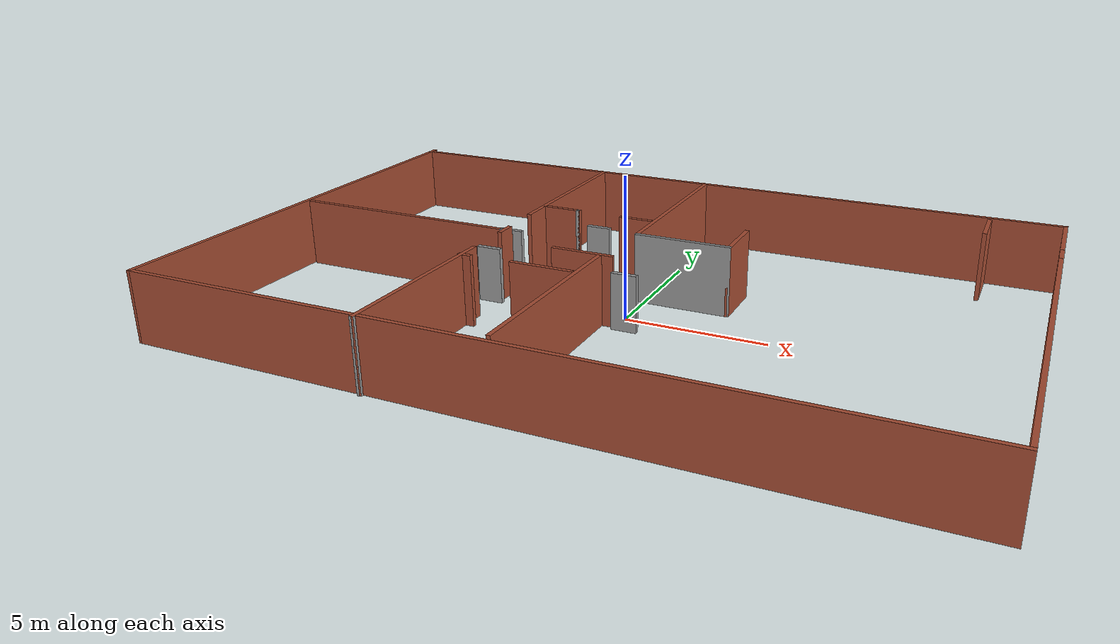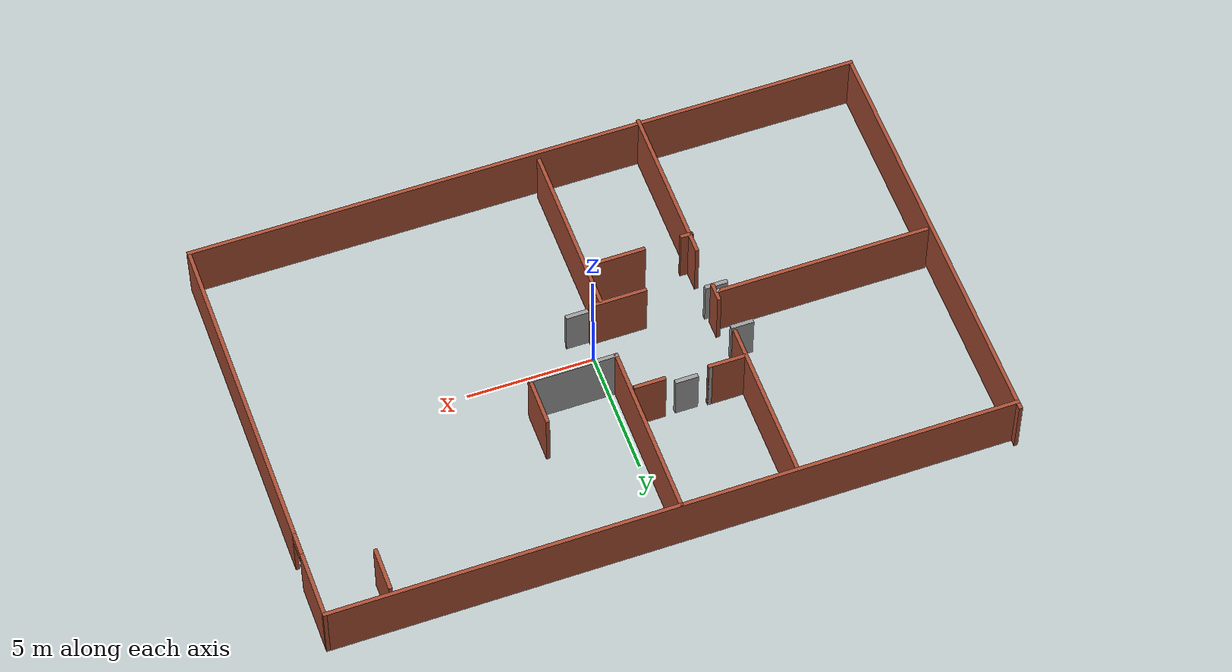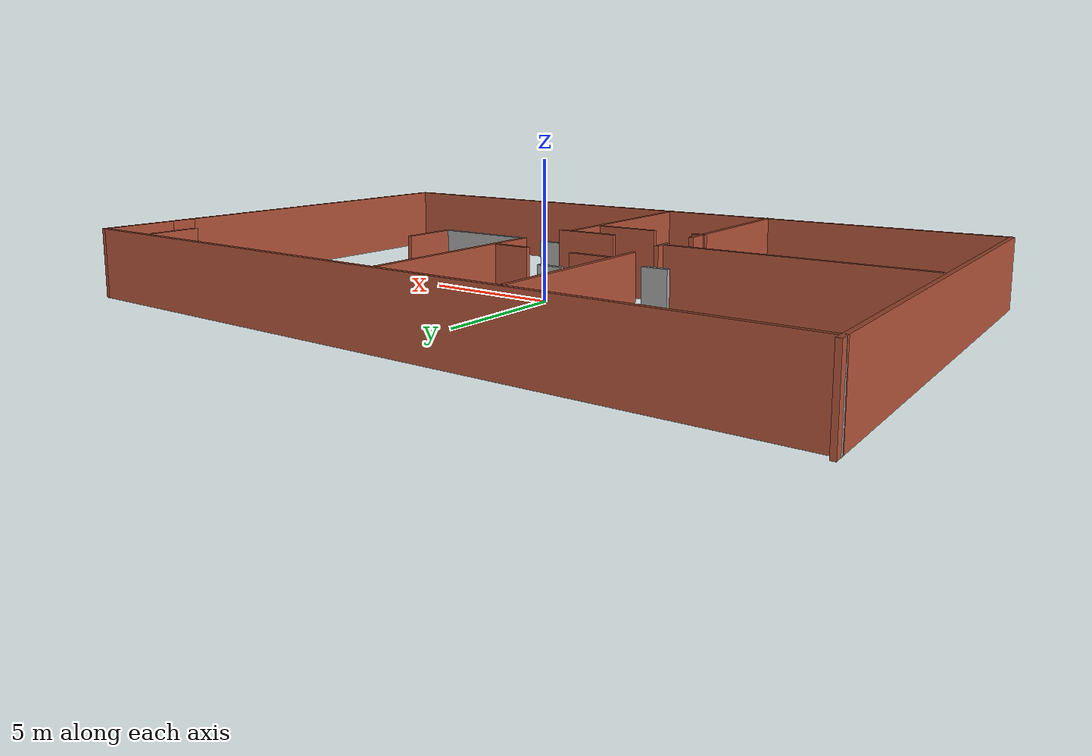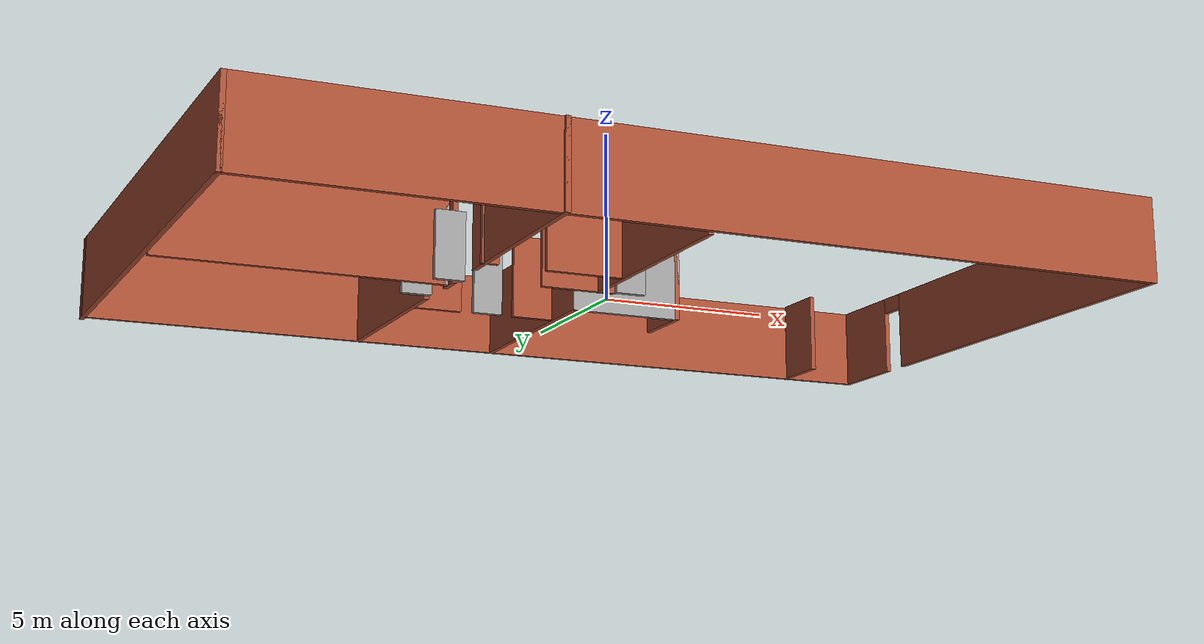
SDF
<?xml version='1.0'?>
<sdf version='1.6'>
  <model name='My_House'>
    <pose frame=''>-0.113138 0.314811 0 0 -0 0</pose>
    <link name='Door_1'>
      <collision name='Door_1_Collision'>
        <geometry>
          <box>
            <size>0.9 0.17 2</size>
          </box>
        </geometry>
        <pose frame=''>0 0 1 0 -0 0</pose>
      </collision>
      <visual name='Door_1_Visual'>
        <pose frame=''>0 0 1 0 -0 0</pose>
        <geometry>
          <box>
            <size>0.9 0.17 2</size>
          </box>
        </geometry>
        <material>
          <script>
            <uri>file://media/materials/scripts/gazebo.material</uri>
            <name>Gazebo/Grey</name>
          </script>
        </material>
      </visual>
      <pose frame=''>0.453986 -1.19512 0 0 -0 0</pose>
    </link>
    <link name='Door_2'>
      <collision name='Door_2_Collision'>
        <geometry>
          <box>
            <size>0.9 0.17 2</size>
          </box>
        </geometry>
        <pose frame=''>0 0 1 0 -0 0</pose>
      </collision>
      <visual name='Door_2_Visual'>
        <pose frame=''>0 0 1 0 -0 0</pose>
        <geometry>
          <box>
            <size>0.9 0.17 2</size>
          </box>
        </geometry>
        <material>
          <script>
            <uri>file://media/materials/scripts/gazebo.material</uri>
            <name>Gazebo/Grey</name>
          </script>
        </material>
      </visual>
      <pose frame=''>-2.38165 2.87107 0 0 -0 0</pose>
    </link>
    <link name='Door_3'>
      <collision name='Door_3_Collision'>
        <geometry>
          <box>
            <size>0.9 0.17 2</size>
          </box>
        </geometry>
        <pose frame=''>0 0 1 0 -0 0</pose>
      </collision>
      <visual name='Door_3_Visual'>
        <pose frame=''>0 0 1 0 -0 0</pose>
        <geometry>
          <box>
            <size>0.9 0.17 2</size>
          </box>
        </geometry>
        <material>
          <script>
            <uri>file://media/materials/scripts/gazebo.material</uri>
            <name>Gazebo/Grey</name>
          </script>
        </material>
      </visual>
      <pose frame=''>-4.8916 -0.713756 0 0 -0 0</pose>
    </link>
    <link name='Door_4'>
      <collision name='Door_4_Collision'>
        <geometry>
          <box>
            <size>0.9 0.17 2</size>
          </box>
        </geometry>
        <pose frame=''>0 0 1 0 -0 0</pose>
      </collision>
      <visual name='Door_4_Visual'>
        <pose frame=''>0 0 1 0 -0 0</pose>
        <geometry>
          <box>
            <size>0.9 0.17 2</size>
          </box>
        </geometry>
        <material>
          <script>
            <uri>file://media/materials/scripts/gazebo.material</uri>
            <name>Gazebo/Grey</name>
          </script>
        </material>
      </visual>
      <pose frame=''>-5.17074 1.28677 0 0 -0 0</pose>
    </link>
    <link name='Wall_0'>
      <collision name='Wall_0_Collision'>
        <geometry>
          <box>
            <size>17 0.15 2.5</size>
          </box>
        </geometry>
        <pose frame=''>0 0 1.25 0 -0 0</pose>
      </collision>
      <visual name='Wall_0_Visual'>
        <pose frame=''>0 0 1.25 0 -0 0</pose>
        <geometry>
          <box>
            <size>17 0.15 2.5</size>
          </box>
        </geometry>
        <material>
          <script>
            <uri>file://media/materials/scripts/gazebo.material</uri>
            <name>Gazebo/Bricks</name>
          </script>
          <ambient>1 1 1 1</ambient>
        </material>
      </visual>
      <pose frame=''>-13.3 0.046748 0 0 0 -1.5708</pose>
    </link>
    <link name='Wall_11'>
      <collision name='Wall_11_Collision'>
        <geometry>
          <box>
            <size>0.75 0.15 2.5</size>
          </box>
        </geometry>
        <pose frame=''>0 0 1.25 0 -0 0</pose>
      </collision>
      <visual name='Wall_11_Visual'>
        <pose frame=''>0 0 1.25 0 -0 0</pose>
        <geometry>
          <box>
            <size>0.75 0.15 2.5</size>
          </box>
        </geometry>
        <material>
          <script>
            <uri>file://media/materials/scripts/gazebo.material</uri>
            <name>Gazebo/Bricks</name>
          </script>
          <ambient>1 1 1 1</ambient>
        </material>
      </visual>
      <pose frame=''>-4.6326 -0.067638 0 0 0 -1.5708</pose>
    </link>
    <link name='Wall_13'>
      <collision name='Wall_13_Collision'>
        <geometry>
          <box>
            <size>6.5 0.15 2.5</size>
          </box>
        </geometry>
        <pose frame=''>0 0 1.25 0 -0 0</pose>
      </collision>
      <visual name='Wall_13_Visual'>
        <pose frame=''>0 0 1.25 0 -0 0</pose>
        <geometry>
          <box>
            <size>6.5 0.15 2.5</size>
          </box>
        </geometry>
        <material>
          <script>
            <uri>file://media/materials/scripts/gazebo.material</uri>
            <name>Gazebo/Bricks</name>
          </script>
          <ambient>1 1 1 1</ambient>
        </material>
      </visual>
      <pose frame=''>-4.6326 -5.29675 0 0 0 -1.5708</pose>
    </link>
    <link name='Wall_14'>
      <collision name='Wall_14_Collision'>
        <geometry>
          <box>
            <size>0.15 0.15 2.5</size>
          </box>
        </geometry>
        <pose frame=''>0 0 1.25 0 -0 0</pose>
      </collision>
      <visual name='Wall_14_Visual'>
        <pose frame=''>0 0 1.25 0 -0 0</pose>
        <geometry>
          <box>
            <size>0.15 0.15 2.5</size>
          </box>
        </geometry>
        <material>
          <script>
            <uri>file://media/materials/scripts/gazebo.material</uri>
            <name>Gazebo/Grey</name>
          </script>
          <ambient>1 1 1 1</ambient>
        </material>
      </visual>
      <pose frame=''>-4.6326 -8.47175 0 0 -0 0</pose>
    </link>
    <link name='Wall_16'>
      <collision name='Wall_16_Collision'>
        <geometry>
          <box>
            <size>7 0.15 2.5</size>
          </box>
        </geometry>
        <pose frame=''>0 0 1.25 0 -0 0</pose>
      </collision>
      <visual name='Wall_16_Visual'>
        <pose frame=''>0 0 1.25 0 -0 0</pose>
        <geometry>
          <box>
            <size>7 0.15 2.5</size>
          </box>
        </geometry>
        <material>
          <script>
            <uri>file://media/materials/scripts/gazebo.material</uri>
            <name>Gazebo/Bricks</name>
          </script>
          <ambient>1 1 1 1</ambient>
        </material>
      </visual>
      <pose frame=''>-0.4594 -4.5837 0 0 0 -1.5708</pose>
    </link>
    <link name='Wall_18'>
      <collision name='Wall_18_Collision'>
        <geometry>
          <box>
            <size>2.25 0.15 2.5</size>
          </box>
        </geometry>
        <pose frame=''>0 0 1.25 0 -0 0</pose>
      </collision>
      <visual name='Wall_18_Visual'>
        <pose frame=''>0 0 1.25 0 -0 0</pose>
        <geometry>
          <box>
            <size>2.25 0.15 2.5</size>
          </box>
        </geometry>
        <material>
          <script>
            <uri>file://media/materials/scripts/gazebo.material</uri>
            <name>Gazebo/Bricks</name>
          </script>
          <ambient>1 1 1 1</ambient>
        </material>
      </visual>
      <pose frame=''>-1.12148 -1.0517 0 0 -0 0</pose>
    </link>
    <link name='Wall_2'>
      <collision name='Wall_2_Collision'>
        <geometry>
          <box>
            <size>26.75 0.15 2.5</size>
          </box>
        </geometry>
        <pose frame=''>0 0 1.25 0 -0 0</pose>
      </collision>
      <visual name='Wall_2_Visual'>
        <pose frame=''>0 0 1.25 0 -0 0</pose>
        <geometry>
          <box>
            <size>26.75 0.15 2.5</size>
          </box>
        </geometry>
        <material>
          <script>
            <uri>file://media/materials/scripts/gazebo.material</uri>
            <name>Gazebo/Bricks</name>
          </script>
          <ambient>1 1 1 1</ambient>
        </material>
      </visual>
      <pose frame=''>0 -8.37825 0 0 -0 0</pose>
    </link>
    <link name='Wall_20'>
      <collision name='Wall_20_Collision'>
        <geometry>
          <box>
            <size>2.25 0.15 2.5</size>
          </box>
        </geometry>
        <pose frame=''>0 0 1.25 0 -0 0</pose>
      </collision>
      <visual name='Wall_20_Visual'>
        <pose frame=''>0 0 1.25 0 -0 0</pose>
        <geometry>
          <box>
            <size>2.25 0.15 2.5</size>
          </box>
        </geometry>
        <material>
          <script>
            <uri>file://media/materials/scripts/gazebo.material</uri>
            <name>Gazebo/Bricks</name>
          </script>
          <ambient>1 1 1 1</ambient>
        </material>
      </visual>
      <pose frame=''>-1.71001 -2.81728 0 0 -0 0</pose>
    </link>
    <link name='Wall_23'>
      <collision name='Wall_23_Collision'>
        <geometry>
          <box>
            <size>0.5 0.15 2.5</size>
          </box>
        </geometry>
        <pose frame=''>0 0 1.25 0 -0 0</pose>
      </collision>
      <visual name='Wall_23_Visual'>
        <pose frame=''>0 0 1.25 0 -0 0</pose>
        <geometry>
          <box>
            <size>0.5 0.15 2.5</size>
          </box>
        </geometry>
        <material>
          <script>
            <uri>file://media/materials/scripts/gazebo.material</uri>
            <name>Gazebo/Bricks</name>
          </script>
          <ambient>1 1 1 1</ambient>
        </material>
      </visual>
      <pose frame=''>-4.5111 -2.87078 0 0 -0 0</pose>
    </link>
    <link name='Wall_25'>
      <collision name='Wall_25_Collision'>
        <geometry>
          <box>
            <size>6.5 0.15 2.5</size>
          </box>
        </geometry>
        <pose frame=''>0 0 1.25 0 -0 0</pose>
      </collision>
      <visual name='Wall_25_Visual'>
        <pose frame=''>0 0 1.25 0 -0 0</pose>
        <geometry>
          <box>
            <size>6.5 0.15 2.5</size>
          </box>
        </geometry>
        <material>
          <script>
            <uri>file://media/materials/scripts/gazebo.material</uri>
            <name>Gazebo/Bricks</name>
          </script>
          <ambient>1 1 1 1</ambient>
        </material>
      </visual>
      <pose frame=''>-4.6861 5.01244 0 0 -0 1.5708</pose>
    </link>
    <link name='Wall_27'>
      <collision name='Wall_27_Collision'>
        <geometry>
          <box>
            <size>7 0.15 2.5</size>
          </box>
        </geometry>
        <pose frame=''>0 0 1.25 0 -0 0</pose>
      </collision>
      <visual name='Wall_27_Visual'>
        <pose frame=''>0 0 1.25 0 -0 0</pose>
        <geometry>
          <box>
            <size>7 0.15 2.5</size>
          </box>
        </geometry>
        <material>
          <script>
            <uri>file://media/materials/scripts/gazebo.material</uri>
            <name>Gazebo/Bricks</name>
          </script>
          <ambient>1 1 1 1</ambient>
        </material>
      </visual>
      <pose frame=''>-0.185794 4.7598 0 0 0 -1.5708</pose>
    </link>
    <link name='Wall_29'>
      <collision name='Wall_29_Collision'>
        <geometry>
          <box>
            <size>3.5 0.15 2.5</size>
          </box>
        </geometry>
        <pose frame=''>0 0 1.25 0 -0 0</pose>
      </collision>
      <visual name='Wall_29_Visual'>
        <pose frame=''>0 0 1.25 0 -0 0</pose>
        <geometry>
          <box>
            <size>3.5 0.15 2.5</size>
          </box>
        </geometry>
        <material>
          <script>
            <uri>file://media/materials/scripts/gazebo.material</uri>
            <name>Gazebo/Grey</name>
          </script>
          <ambient>1 1 1 1</ambient>
        </material>
      </visual>
      <pose frame=''>1.48921 1.33479 0 0 -0 0</pose>
    </link>
    <link name='Wall_3'>
      <pose frame=''>13.3 -0.078252 0 0 -0 1.5708</pose>
      <visual name='Wall_3_Visual_0'>
        <pose frame=''>-1.81429 0 1.25 0 -0 0</pose>
        <geometry>
          <box>
            <size>13.1214 0.15 2.5</size>
          </box>
        </geometry>
        <material>
          <script>
            <uri>file://media/materials/scripts/gazebo.material</uri>
            <name>Gazebo/Bricks</name>
          </script>
          <ambient>1 1 1 1</ambient>
        </material>
      </visual>
      <collision name='Wall_3_Collision_0'>
        <geometry>
          <box>
            <size>13.1214 0.15 2.5</size>
          </box>
        </geometry>
        <pose frame=''>-1.81429 0 1.25 0 -0 0</pose>
      </collision>
      <visual name='Wall_3_Visual_1'>
        <pose frame=''>7.01071 0 1.25 0 -0 0</pose>
        <geometry>
          <box>
            <size>2.72857 0.15 2.5</size>
          </box>
        </geometry>
        <material>
          <script>
            <uri>file://media/materials/scripts/gazebo.material</uri>
            <name>Gazebo/Bricks</name>
          </script>
          <ambient>1 1 1 1</ambient>
        </material>
      </visual>
      <collision name='Wall_3_Collision_1'>
        <geometry>
          <box>
            <size>2.72857 0.15 2.5</size>
          </box>
        </geometry>
        <pose frame=''>7.01071 0 1.25 0 -0 0</pose>
      </collision>
      <visual name='Wall_3_Visual_2'>
        <pose frame=''>5.19643 0 2.25 0 -0 0</pose>
        <geometry>
          <box>
            <size>0.9 0.15 0.5</size>
          </box>
        </geometry>
        <material>
          <script>
            <uri>file://media/materials/scripts/gazebo.material</uri>
            <name>Gazebo/Bricks</name>
          </script>
          <ambient>1 1 1 1</ambient>
        </material>
      </visual>
      <collision name='Wall_3_Collision_2'>
        <geometry>
          <box>
            <size>0.9 0.15 0.5</size>
          </box>
        </geometry>
        <pose frame=''>5.19643 0 2.25 0 -0 0</pose>
      </collision>
    </link>
    <link name='Wall_31'>
      <collision name='Wall_31_Collision'>
        <geometry>
          <box>
            <size>1.5 0.15 2.5</size>
          </box>
        </geometry>
        <pose frame=''>0 0 1.25 0 -0 0</pose>
      </collision>
      <visual name='Wall_31_Visual'>
        <pose frame=''>0 0 1.25 0 -0 0</pose>
        <geometry>
          <box>
            <size>1.5 0.15 2.5</size>
          </box>
        </geometry>
        <material>
          <script>
            <uri>file://media/materials/scripts/gazebo.material</uri>
            <name>Gazebo/Bricks</name>
          </script>
          <ambient>1 1 1 1</ambient>
        </material>
      </visual>
      <pose frame=''>-3.9408 2.95493 0 0 -0 0</pose>
    </link>
    <link name='Wall_32'>
      <collision name='Wall_32_Collision'>
        <geometry>
          <box>
            <size>0.15 0.15 2.5</size>
          </box>
        </geometry>
        <pose frame=''>0 0 1.25 0 -0 0</pose>
      </collision>
      <visual name='Wall_32_Visual'>
        <pose frame=''>0 0 1.25 0 -0 0</pose>
        <geometry>
          <box>
            <size>0.15 0.15 2.5</size>
          </box>
        </geometry>
        <material>
          <script>
            <uri>file://media/materials/scripts/gazebo.material</uri>
            <name>Gazebo/Grey</name>
          </script>
          <ambient>1 1 1 1</ambient>
        </material>
      </visual>
      <pose frame=''>-3.2658 2.95493 0 0 -0 0</pose>
    </link>
    <link name='Wall_34'>
      <collision name='Wall_34_Collision'>
        <geometry>
          <box>
            <size>1.25 0.15 2.5</size>
          </box>
        </geometry>
        <pose frame=''>0 0 1.25 0 -0 0</pose>
      </collision>
      <visual name='Wall_34_Visual'>
        <pose frame=''>0 0 1.25 0 -0 0</pose>
        <geometry>
          <box>
            <size>1.25 0.15 2.5</size>
          </box>
        </geometry>
        <material>
          <script>
            <uri>file://media/materials/scripts/gazebo.material</uri>
            <name>Gazebo/Bricks</name>
          </script>
          <ambient>1 1 1 1</ambient>
        </material>
      </visual>
      <pose frame=''>-0.927879 2.8934 0 0 -0 0</pose>
    </link>
    <link name='Wall_36'>
      <collision name='Wall_36_Collision'>
        <geometry>
          <box>
            <size>3.5 0.15 2.5</size>
          </box>
        </geometry>
        <pose frame=''>0 0 1.25 0 -0 0</pose>
      </collision>
      <visual name='Wall_36_Visual'>
        <pose frame=''>0 0 1.25 0 -0 0</pose>
        <geometry>
          <box>
            <size>3.5 0.15 2.5</size>
          </box>
        </geometry>
        <material>
          <script>
            <uri>file://media/materials/scripts/gazebo.material</uri>
            <name>Gazebo/Bricks</name>
          </script>
          <ambient>1 1 1 1</ambient>
        </material>
      </visual>
      <pose frame=''>1.48921 1.33479 0 0 -0 0</pose>
    </link>
    <link name='Wall_38'>
      <collision name='Wall_38_Collision'>
        <geometry>
          <box>
            <size>2 0.15 2.5</size>
          </box>
        </geometry>
        <pose frame=''>0 0 1.25 0 -0 0</pose>
      </collision>
      <visual name='Wall_38_Visual'>
        <pose frame=''>0 0 1.25 0 -0 0</pose>
        <geometry>
          <box>
            <size>2 0.15 2.5</size>
          </box>
        </geometry>
        <material>
          <script>
            <uri>file://media/materials/scripts/gazebo.material</uri>
            <name>Gazebo/Bricks</name>
          </script>
          <ambient>1 1 1 1</ambient>
        </material>
      </visual>
      <pose frame=''>3.16421 2.25979 0 0 -0 1.5708</pose>
    </link>
    <link name='Wall_4'>
      <collision name='Wall_4_Collision'>
        <geometry>
          <box>
            <size>26.75 0.15 2.5</size>
          </box>
        </geometry>
        <pose frame=''>0 0 1.25 0 -0 0</pose>
      </collision>
      <visual name='Wall_4_Visual'>
        <pose frame=''>0 0 1.25 0 -0 0</pose>
        <geometry>
          <box>
            <size>26.75 0.15 2.5</size>
          </box>
        </geometry>
        <material>
          <script>
            <uri>file://media/materials/scripts/gazebo.material</uri>
            <name>Gazebo/Bricks</name>
          </script>
          <ambient>1 1 1 1</ambient>
        </material>
      </visual>
      <pose frame=''>0 8.22175 0 0 -0 3.14159</pose>
    </link>
    <link name='Wall_40'>
      <collision name='Wall_40_Collision'>
        <geometry>
          <box>
            <size>1.75 0.15 2.5</size>
          </box>
        </geometry>
        <pose frame=''>0 0 1.25 0 -0 0</pose>
      </collision>
      <visual name='Wall_40_Visual'>
        <pose frame=''>0 0 1.25 0 -0 0</pose>
        <geometry>
          <box>
            <size>1.75 0.15 2.5</size>
          </box>
        </geometry>
        <material>
          <script>
            <uri>file://media/materials/scripts/gazebo.material</uri>
            <name>Gazebo/Bricks</name>
          </script>
          <ambient>1 1 1 1</ambient>
        </material>
      </visual>
      <pose frame=''>10.7662 7.13896 0 0 -0 1.5708</pose>
    </link>
    <link name='Wall_5'>
      <collision name='Wall_5_Collision'>
        <geometry>
          <box>
            <size>0.15 0.15 2.5</size>
          </box>
        </geometry>
        <pose frame=''>0 0 1.25 0 -0 0</pose>
      </collision>
      <visual name='Wall_5_Visual'>
        <pose frame=''>0 0 1.25 0 -0 0</pose>
        <geometry>
          <box>
            <size>0.15 0.15 2.5</size>
          </box>
        </geometry>
        <material>
          <script>
            <uri>file://media/materials/scripts/gazebo.material</uri>
            <name>Gazebo/Grey</name>
          </script>
          <ambient>1 1 1 1</ambient>
        </material>
      </visual>
      <pose frame=''>-13.3 8.22175 0 0 -0 0</pose>
    </link>
    <link name='Wall_7'>
      <collision name='Wall_7_Collision'>
        <geometry>
          <box>
            <size>8.5 0.15 2.5</size>
          </box>
        </geometry>
        <pose frame=''>0 0 1.25 0 -0 0</pose>
      </collision>
      <visual name='Wall_7_Visual'>
        <pose frame=''>0 0 1.25 0 -0 0</pose>
        <geometry>
          <box>
            <size>8.5 0.15 2.5</size>
          </box>
        </geometry>
        <material>
          <script>
            <uri>file://media/materials/scripts/gazebo.material</uri>
            <name>Gazebo/Bricks</name>
          </script>
          <ambient>1 1 1 1</ambient>
        </material>
      </visual>
      <pose frame=''>-8.91099 -0.088653 0 0 -0 0</pose>
    </link>
    <link name='Wall_8'>
      <collision name='Wall_8_Collision'>
        <geometry>
          <box>
            <size>0.15 0.15 2.5</size>
          </box>
        </geometry>
        <pose frame=''>0 0 1.25 0 -0 0</pose>
      </collision>
      <visual name='Wall_8_Visual'>
        <pose frame=''>0 0 1.25 0 -0 0</pose>
        <geometry>
          <box>
            <size>0.15 0.15 2.5</size>
          </box>
        </geometry>
        <material>
          <script>
            <uri>file://media/materials/scripts/gazebo.material</uri>
            <name>Gazebo/Grey</name>
          </script>
          <ambient>1 1 1 1</ambient>
        </material>
      </visual>
      <pose frame=''>-4.73599 -0.088653 0 0 -0 0</pose>
    </link>
    <static>1</static>
  </model>
</sdf>
